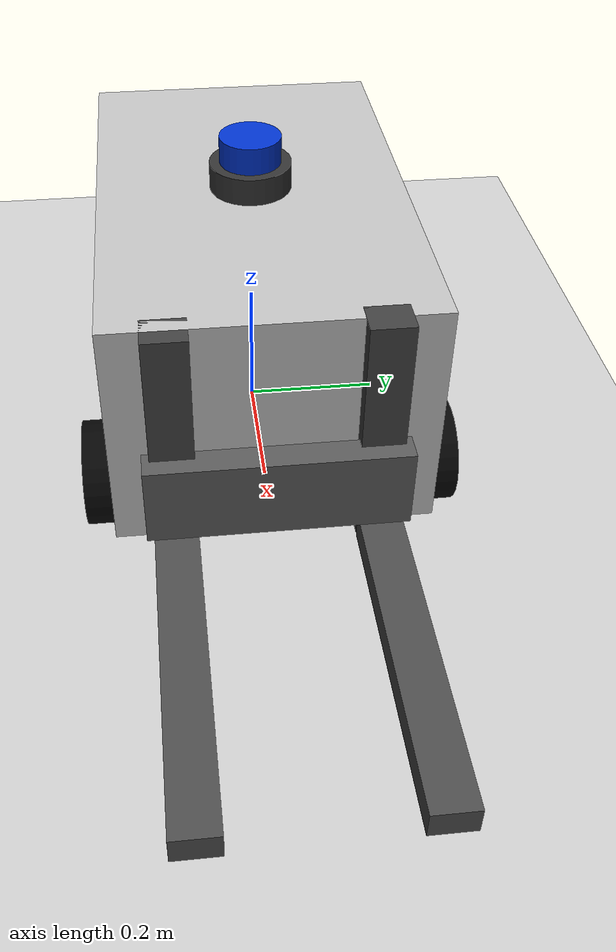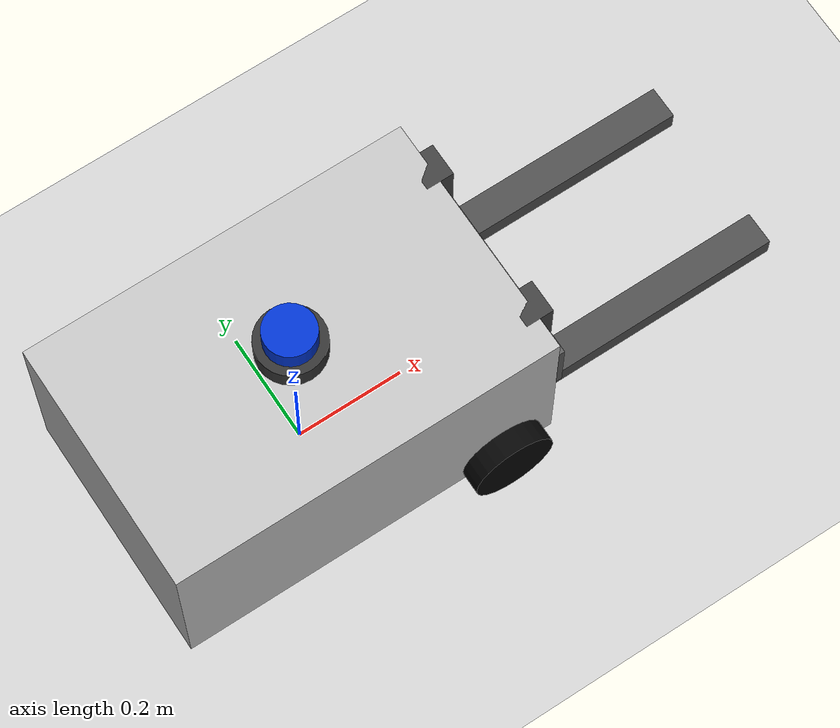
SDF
<?xml version="1.0" ?>
<sdf version="1.9">
  <world name="hamals_empty">

    <plugin
      filename="gz-sim-physics-system"
      name="gz::sim::systems::Physics">
    </plugin>

    <plugin
      filename="gz-sim-user-commands-system"
      name="gz::sim::systems::UserCommands">
    </plugin>

    <plugin
      filename="gz-sim-scene-broadcaster-system"
      name="gz::sim::systems::SceneBroadcaster">
    </plugin>

    <light type="directional" name="sun">
      <cast_shadows>true</cast_shadows>
      <pose>0 0 10 0 0 0</pose>
      <diffuse>0.8 0.8 0.8 1</diffuse>
      <specular>0.2 0.2 0.2 1</specular>
      <direction>-0.5 0.1 -0.9</direction>
    </light>

    <model name="ground_plane">
      <static>true</static>

      <link name="link">
        <collision name="collision">
          <geometry>
            <plane>
              <normal>0 0 1</normal>
              <size>100 100</size>
            </plane>
          </geometry>
        </collision>

        <visual name="visual">
          <geometry>
            <plane>
              <normal>0 0 1</normal>
              <size>100 100</size>
            </plane>
          </geometry>

          <material>
            <ambient>0.8 0.8 0.8 1</ambient>
            <diffuse>0.8 0.8 0.8 1</diffuse>
          </material>
        </visual>
      </link>
    </model>

    <include>
      <uri>model://hamals_robot</uri>
      <name>hamals_robot</name>
      <pose>0 0 0 0 0 0</pose>
    </include>

  </world>
</sdf>

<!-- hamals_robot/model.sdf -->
<sdf version="1.9">
  <model name="hamals_robot">
    <pose>0 0 0 0 0 0</pose>

    <link name="base_link">
      <pose>0.0 0.0 0.215 0.0 0.0 0.0</pose>

      <inertial>
        <mass>18.0</mass>
        <inertia>
          <ixx>0.35</ixx>
          <ixy>0.0</ixy>
          <ixz>0.0</ixz>
          <iyy>0.8</iyy>
          <iyz>0.0</iyz>
          <izz>0.95</izz>
        </inertia>
      </inertial>

      <collision name="base_link_collision">
        <geometry>
          <box>
            <size>0.7 0.45 0.35</size>
          </box>
        </geometry>
      </collision>

      <visual name="base_link_visual">
        <geometry>
          <box>
            <size>0.7 0.45 0.35</size>
          </box>
        </geometry>
        <material>
          <ambient>0.75 0.75 0.75 1.0</ambient>
          <diffuse>0.75 0.75 0.75 1.0</diffuse>
        </material>
      </visual>
    </link>

    <link name="left_drive_wheel_link">
      <pose>0.25 0.245 0.07499999999999998 1.5708 0.0 0.0</pose>

      <inertial>
        <mass>0.7</mass>
        <inertia>
          <ixx>0.002</ixx>
          <ixy>0.0</ixy>
          <ixz>0.0</ixz>
          <iyy>0.002</iyy>
          <iyz>0.0</iyz>
          <izz>0.001</izz>
        </inertia>
      </inertial>

      <collision name="left_drive_wheel_link_collision">
        <geometry>
          <cylinder>
            <radius>0.075</radius>
            <length>0.04</length>
          </cylinder>
        </geometry>
      </collision>

      <visual name="left_drive_wheel_link_visual">
        <geometry>
          <cylinder>
            <radius>0.075</radius>
            <length>0.04</length>
          </cylinder>
        </geometry>
        <material>
          <ambient>0.02 0.02 0.02 1.0</ambient>
          <diffuse>0.02 0.02 0.02 1.0</diffuse>
        </material>
      </visual>
    </link>

    <joint name="left_drive_wheel_joint" type="revolute">
      <parent>base_link</parent>
      <child>left_drive_wheel_link</child>
      <axis>
        <xyz>0.0 0.0 1.0</xyz>
        <limit>
          <lower>-1e16</lower>
          <upper>1e16</upper>
        </limit>
      </axis>
    </joint>

    <link name="right_drive_wheel_link">
      <pose>0.25 -0.245 0.07499999999999998 1.5708 0.0 0.0</pose>

      <inertial>
        <mass>0.7</mass>
        <inertia>
          <ixx>0.002</ixx>
          <ixy>0.0</ixy>
          <ixz>0.0</ixz>
          <iyy>0.002</iyy>
          <iyz>0.0</iyz>
          <izz>0.001</izz>
        </inertia>
      </inertial>

      <collision name="right_drive_wheel_link_collision">
        <geometry>
          <cylinder>
            <radius>0.075</radius>
            <length>0.04</length>
          </cylinder>
        </geometry>
      </collision>

      <visual name="right_drive_wheel_link_visual">
        <geometry>
          <cylinder>
            <radius>0.075</radius>
            <length>0.04</length>
          </cylinder>
        </geometry>
        <material>
          <ambient>0.02 0.02 0.02 1.0</ambient>
          <diffuse>0.02 0.02 0.02 1.0</diffuse>
        </material>
      </visual>
    </link>

    <joint name="right_drive_wheel_joint" type="revolute">
      <parent>base_link</parent>
      <child>right_drive_wheel_link</child>
      <axis>
        <xyz>0.0 0.0 1.0</xyz>
        <limit>
          <lower>-1e16</lower>
          <upper>1e16</upper>
        </limit>
      </axis>
    </joint>

    <link name="rear_center_caster_link">
      <pose>-0.26 0.0 0.04000000000000001 0.0 0.0 0.0</pose>

      <inertial>
        <mass>0.3</mass>
        <inertia>
          <ixx>0.001</ixx>
          <ixy>0.0</ixy>
          <ixz>0.0</ixz>
          <iyy>0.001</iyy>
          <iyz>0.0</iyz>
          <izz>0.001</izz>
        </inertia>
      </inertial>

      <collision name="rear_center_caster_link_collision">
        <geometry>
          <sphere>
            <radius>0.04</radius>
          </sphere>
        </geometry>
      </collision>

      <visual name="rear_center_caster_link_visual">
        <geometry>
          <sphere>
            <radius>0.04</radius>
          </sphere>
        </geometry>
        <material>
          <ambient>0.02 0.02 0.02 1.0</ambient>
          <diffuse>0.02 0.02 0.02 1.0</diffuse>
        </material>
      </visual>
    </link>

    <joint name="rear_center_caster_joint" type="fixed">
      <parent>base_link</parent>
      <child>rear_center_caster_link</child>
    </joint>

    <link name="forklift_mast_link">
      <pose>0.35 0.0 0.215 0.0 0.0 0.0</pose>

      <inertial>
        <mass>2.0</mass>
        <inertia>
          <ixx>0.05</ixx>
          <ixy>0.0</ixy>
          <ixz>0.0</ixz>
          <iyy>0.05</iyy>
          <iyz>0.0</iyz>
          <izz>0.02</izz>
        </inertia>
      </inertial>

      <collision name="forklift_mast_collision">
        <geometry>
          <box>
            <size>0.05 0.36 0.35</size>
          </box>
        </geometry>
      </collision>

      <visual name="left_mast_column_visual">
        <pose>0.0 0.14 0.0 0.0 0.0 0.0</pose>
        <geometry>
          <box>
            <size>0.05 0.06 0.35</size>
          </box>
        </geometry>
        <material>
          <ambient>0.25 0.25 0.25 1.0</ambient>
          <diffuse>0.25 0.25 0.25 1.0</diffuse>
        </material>
      </visual>

      <visual name="right_mast_column_visual">
        <pose>0.0 -0.14 0.0 0.0 0.0 0.0</pose>
        <geometry>
          <box>
            <size>0.05 0.06 0.35</size>
          </box>
        </geometry>
        <material>
          <ambient>0.25 0.25 0.25 1.0</ambient>
          <diffuse>0.25 0.25 0.25 1.0</diffuse>
        </material>
      </visual>
    </link>

    <joint name="forklift_mast_joint" type="fixed">
      <parent>base_link</parent>
      <child>forklift_mast_link</child>
    </joint>

    <link name="fork_carriage_link">
      <pose>0.38 0.0 0.14 0.0 0.0 0.0</pose>

      <inertial>
        <mass>1.5</mass>
        <inertia>
          <ixx>0.02</ixx>
          <ixy>0.0</ixy>
          <ixz>0.0</ixz>
          <iyy>0.03</iyy>
          <iyz>0.0</iyz>
          <izz>0.04</izz>
        </inertia>
      </inertial>

      <collision name="fork_carriage_link_collision">
        <geometry>
          <box>
            <size>0.04 0.36 0.12</size>
          </box>
        </geometry>
      </collision>

      <visual name="fork_carriage_link_visual">
        <geometry>
          <box>
            <size>0.04 0.36 0.12</size>
          </box>
        </geometry>
        <material>
          <ambient>0.35 0.35 0.35 1.0</ambient>
          <diffuse>0.35 0.35 0.35 1.0</diffuse>
        </material>
      </visual>
    </link>

    <joint name="forklift_lift_joint" type="prismatic">
      <parent>forklift_mast_link</parent>
      <child>fork_carriage_link</child>
      <axis>
        <xyz>0.0 0.0 1.0</xyz>
        <limit>
          <lower>0.0</lower>
          <upper>0.2</upper>
          <effort>100.0</effort>
          <velocity>0.15</velocity>
        </limit>
      </axis>
    </joint>

    <link name="left_fork_link">
      <pose>0.605 0.14 0.06000000000000001 0.0 0.0 0.0</pose>

      <inertial>
        <mass>0.8</mass>
        <inertia>
          <ixx>0.01</ixx>
          <ixy>0.0</ixy>
          <ixz>0.0</ixz>
          <iyy>0.03</iyy>
          <iyz>0.0</iyz>
          <izz>0.03</izz>
        </inertia>
      </inertial>

      <collision name="left_fork_link_collision">
        <geometry>
          <box>
            <size>0.45 0.06 0.04</size>
          </box>
        </geometry>
      </collision>

      <visual name="left_fork_link_visual">
        <geometry>
          <box>
            <size>0.45 0.06 0.04</size>
          </box>
        </geometry>
        <material>
          <ambient>0.3 0.3 0.3 1.0</ambient>
          <diffuse>0.3 0.3 0.3 1.0</diffuse>
        </material>
      </visual>
    </link>

    <joint name="left_fork_joint" type="fixed">
      <parent>fork_carriage_link</parent>
      <child>left_fork_link</child>
    </joint>

    <link name="right_fork_link">
      <pose>0.605 -0.14 0.06000000000000001 0.0 0.0 0.0</pose>

      <inertial>
        <mass>0.8</mass>
        <inertia>
          <ixx>0.01</ixx>
          <ixy>0.0</ixy>
          <ixz>0.0</ixz>
          <iyy>0.03</iyy>
          <iyz>0.0</iyz>
          <izz>0.03</izz>
        </inertia>
      </inertial>

      <collision name="right_fork_link_collision">
        <geometry>
          <box>
            <size>0.45 0.06 0.04</size>
          </box>
        </geometry>
      </collision>

      <visual name="right_fork_link_visual">
        <geometry>
          <box>
            <size>0.45 0.06 0.04</size>
          </box>
        </geometry>
        <material>
          <ambient>0.3 0.3 0.3 1.0</ambient>
          <diffuse>0.3 0.3 0.3 1.0</diffuse>
        </material>
      </visual>
    </link>

    <joint name="right_fork_joint" type="fixed">
      <parent>fork_carriage_link</parent>
      <child>right_fork_link</child>
    </joint>

    <link name="lidar_mount_link">
      <pose>0.0 0.0 0.41000000000000003 0.0 0.0 0.0</pose>

      <inertial>
        <mass>0.2</mass>
        <inertia>
          <ixx>0.0005</ixx>
          <ixy>0.0</ixy>
          <ixz>0.0</ixz>
          <iyy>0.0005</iyy>
          <iyz>0.0</iyz>
          <izz>0.0005</izz>
        </inertia>
      </inertial>

      <collision name="lidar_mount_link_collision">
        <geometry>
          <cylinder>
            <radius>0.06</radius>
            <length>0.04</length>
          </cylinder>
        </geometry>
      </collision>

      <visual name="lidar_mount_link_visual">
        <geometry>
          <cylinder>
            <radius>0.06</radius>
            <length>0.04</length>
          </cylinder>
        </geometry>
        <material>
          <ambient>0.2 0.2 0.2 1.0</ambient>
          <diffuse>0.2 0.2 0.2 1.0</diffuse>
        </material>
      </visual>
    </link>

    <joint name="lidar_mount_joint" type="fixed">
      <parent>base_link</parent>
      <child>lidar_mount_link</child>
    </joint>

    <link name="lidar_link">
      <pose>0.0 0.0 0.45 0.0 0.0 0.0</pose>

      <inertial>
        <mass>0.25</mass>
        <inertia>
          <ixx>0.0008</ixx>
          <ixy>0.0</ixy>
          <ixz>0.0</ixz>
          <iyy>0.0008</iyy>
          <iyz>0.0</iyz>
          <izz>0.0008</izz>
        </inertia>
      </inertial>

      <collision name="lidar_link_collision">
        <geometry>
          <cylinder>
            <radius>0.045</radius>
            <length>0.04</length>
          </cylinder>
        </geometry>
      </collision>

      <visual name="lidar_link_visual">
        <geometry>
          <cylinder>
            <radius>0.045</radius>
            <length>0.04</length>
          </cylinder>
        </geometry>
        <material>
          <ambient>0.0 0.2 0.8 1.0</ambient>
          <diffuse>0.0 0.2 0.8 1.0</diffuse>
        </material>
      </visual>
    </link>

    <joint name="lidar_joint" type="fixed">
      <parent>lidar_mount_link</parent>
      <child>lidar_link</child>
    </joint>

  </model>
</sdf>
